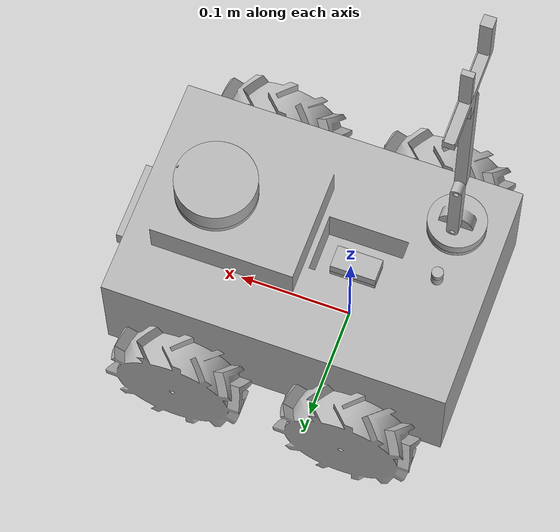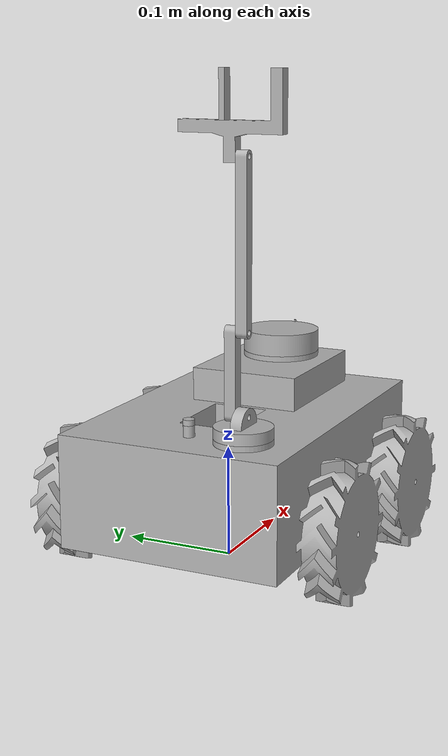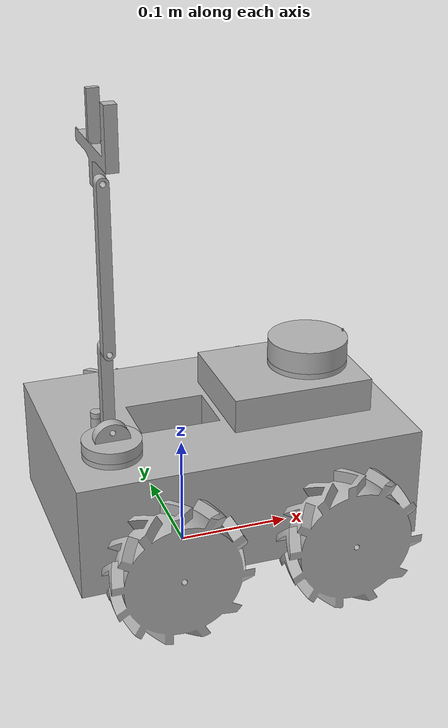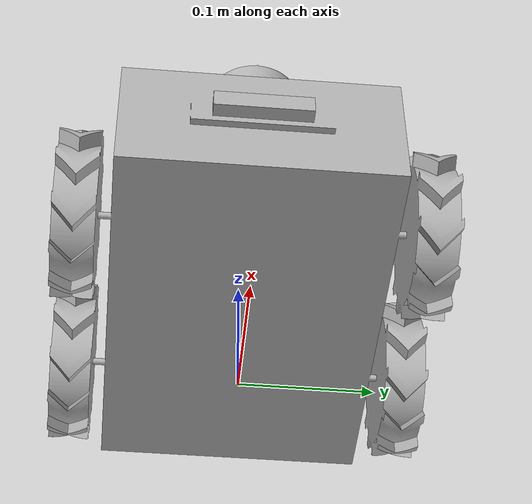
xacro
<?xml version="1.0" ?>
<robot name="yodha_robot_urdf" xmlns:xacro="http://www.ros.org/wiki/xacro">

<xacro:include filename="$(find yodha_robot_urdf_description)/urdf/materials.xacro" />
<xacro:include filename="$(find yodha_robot_urdf_description)/urdf/yodha_robot_urdf.trans" />
<xacro:include filename="$(find yodha_robot_urdf_description)/urdf/yodha_robot_urdf.gazebo" />
<link name="base_link">
  <inertial>
    <origin xyz="0.03759192510064886 0.00114551253474628 0.08335481785975894" rpy="0 0 0"/>
    <mass value="6.677608360201219"/>
    <inertia ixx="0.028505" iyy="0.056903" izz="0.071517" ixy="-6e-05" iyz="2.6e-05" ixz="-0.001749"/>
  </inertial>
  <visual>
    <origin xyz="0 0 0" rpy="0 0 0"/>
    <geometry>
      <mesh filename="file://$(find yodha_robot_urdf_description)/meshes/base_link.stl" scale="0.001 0.001 0.001"/>
    </geometry>
    <material name="silver"/>
  </visual>
  <collision>
    <origin xyz="0 0 0" rpy="0 0 0"/>
    <geometry>
      <mesh filename="file://$(find yodha_robot_urdf_description)/meshes/base_link.stl" scale="0.001 0.001 0.001"/>
    </geometry>
  </collision>
</link>

<link name="lidar_1">
  <inertial>
    <origin xyz="1.44853377330445e-06 2.7616170642256674e-07 0.010000470080404444" rpy="0 0 0"/>
    <mass value="0.6042382071025928"/>
    <inertia ixx="0.000205" iyy="0.000205" izz="0.00037" ixy="-0.0" iyz="-0.0" ixz="-0.0"/>
  </inertial>
  <visual>
    <origin xyz="-0.117737 -0.001226 -0.164764" rpy="0 0 0"/>
    <geometry>
      <mesh filename="file://$(find yodha_robot_urdf_description)/meshes/lidar_1.stl" scale="0.001 0.001 0.001"/>
    </geometry>
    <material name="silver"/>
  </visual>
  <collision>
    <origin xyz="-0.117737 -0.001226 -0.164764" rpy="0 0 0"/>
    <geometry>
      <mesh filename="file://$(find yodha_robot_urdf_description)/meshes/lidar_1.stl" scale="0.001 0.001 0.001"/>
    </geometry>
  </collision>
</link>

<link name="realsence_1">
  <inertial>
    <origin xyz="0.004999707663906422 2.761617057150164e-07 -1.0024462618329899e-07" rpy="0 0 0"/>
    <mass value="0.08242500245645643"/>
    <inertia ixx="3.5e-05" iyy="2e-06" izz="3.4e-05" ixy="-0.0" iyz="-0.0" ixz="0.0"/>
  </inertial>
  <visual>
    <origin xyz="-0.187737 -0.001226 -0.082264" rpy="0 0 0"/>
    <geometry>
      <mesh filename="file://$(find yodha_robot_urdf_description)/meshes/realsence_1.stl" scale="0.001 0.001 0.001"/>
    </geometry>
    <material name="silver"/>
  </visual>
  <collision>
    <origin xyz="-0.187737 -0.001226 -0.082264" rpy="0 0 0"/>
    <geometry>
      <mesh filename="file://$(find yodha_robot_urdf_description)/meshes/realsence_1.stl" scale="0.001 0.001 0.001"/>
    </geometry>
  </collision>
</link>

<link name="rfwheel_1">
  <inertial>
    <origin xyz="-0.0004889140025854805 -0.014999723838293719 0.00011426195402471084" rpy="0 0 0"/>
    <mass value="2.044817023447539"/>
    <inertia ixx="0.001605" iyy="0.002914" izz="0.001615" ixy="-0.0" iyz="-0.0" ixz="2e-06"/>
  </inertial>
  <visual>
    <origin xyz="-0.107737 0.108774 -0.054764" rpy="0 0 0"/>
    <geometry>
      <mesh filename="file://$(find yodha_robot_urdf_description)/meshes/rfwheel_1.stl" scale="0.001 0.001 0.001"/>
    </geometry>
    <material name="silver"/>
  </visual>
  <collision>
    <origin xyz="-0.107737 0.108774 -0.054764" rpy="0 0 0"/>
    <geometry>
      <mesh filename="file://$(find yodha_robot_urdf_description)/meshes/rfwheel_1.stl" scale="0.001 0.001 0.001"/>
    </geometry>
  </collision>
</link>

<link name="rbwheel_1">
  <inertial>
    <origin xyz="-0.0004889140025840233 -0.014999723838292706 0.00011426195402416961" rpy="0 0 0"/>
    <mass value="2.0448170234475396"/>
    <inertia ixx="0.001605" iyy="0.002914" izz="0.001615" ixy="0.0" iyz="-0.0" ixz="2e-06"/>
  </inertial>
  <visual>
    <origin xyz="0.042263 0.108774 -0.054764" rpy="0 0 0"/>
    <geometry>
      <mesh filename="file://$(find yodha_robot_urdf_description)/meshes/rbwheel_1.stl" scale="0.001 0.001 0.001"/>
    </geometry>
    <material name="silver"/>
  </visual>
  <collision>
    <origin xyz="0.042263 0.108774 -0.054764" rpy="0 0 0"/>
    <geometry>
      <mesh filename="file://$(find yodha_robot_urdf_description)/meshes/rbwheel_1.stl" scale="0.001 0.001 0.001"/>
    </geometry>
  </collision>
</link>

<link name="lfwheel_1">
  <inertial>
    <origin xyz="-0.0004889140025847172 0.01500027616170617 0.00011426195402349654" rpy="0 0 0"/>
    <mass value="2.044817023447539"/>
    <inertia ixx="0.001605" iyy="0.002914" izz="0.001615" ixy="0.0" iyz="-0.0" ixz="2e-06"/>
  </inertial>
  <visual>
    <origin xyz="-0.107737 -0.111226 -0.054764" rpy="0 0 0"/>
    <geometry>
      <mesh filename="file://$(find yodha_robot_urdf_description)/meshes/lfwheel_1.stl" scale="0.001 0.001 0.001"/>
    </geometry>
    <material name="silver"/>
  </visual>
  <collision>
    <origin xyz="-0.107737 -0.111226 -0.054764" rpy="0 0 0"/>
    <geometry>
      <mesh filename="file://$(find yodha_robot_urdf_description)/meshes/lfwheel_1.stl" scale="0.001 0.001 0.001"/>
    </geometry>
  </collision>
</link>

<link name="lbwheel_1">
  <inertial>
    <origin xyz="-0.0004889140025833849 0.015000276161707196 0.00011426195402289979" rpy="0 0 0"/>
    <mass value="2.0448170234475396"/>
    <inertia ixx="0.001605" iyy="0.002914" izz="0.001615" ixy="0.0" iyz="-0.0" ixz="2e-06"/>
  </inertial>
  <visual>
    <origin xyz="0.042263 -0.111226 -0.054764" rpy="0 0 0"/>
    <geometry>
      <mesh filename="file://$(find yodha_robot_urdf_description)/meshes/lbwheel_1.stl" scale="0.001 0.001 0.001"/>
    </geometry>
    <material name="silver"/>
  </visual>
  <collision>
    <origin xyz="0.042263 -0.111226 -0.054764" rpy="0 0 0"/>
    <geometry>
      <mesh filename="file://$(find yodha_robot_urdf_description)/meshes/lbwheel_1.stl" scale="0.001 0.001 0.001"/>
    </geometry>
  </collision>
</link>

<link name="imu_1">
  <inertial>
    <origin xyz="8.556984261789968e-10 2.420403805189785e-12 0.004999898451521614" rpy="0 0 0"/>
    <mass value="0.06280000187158614"/>
    <inertia ixx="3e-06" iyy="9e-06" izz="1e-05" ixy="0.0" iyz="-0.0" ixz="-0.0"/>
  </inertial>
  <visual>
    <origin xyz="0.005 -0.0 -0.099764" rpy="0 0 0"/>
    <geometry>
      <mesh filename="file://$(find yodha_robot_urdf_description)/meshes/imu_1.stl" scale="0.001 0.001 0.001"/>
    </geometry>
    <material name="silver"/>
  </visual>
  <collision>
    <origin xyz="0.005 -0.0 -0.099764" rpy="0 0 0"/>
    <geometry>
      <mesh filename="file://$(find yodha_robot_urdf_description)/meshes/imu_1.stl" scale="0.001 0.001 0.001"/>
    </geometry>
  </collision>
</link>

<link name="gps_1">
  <inertial>
    <origin xyz="9.296814013071142e-10 2.4204614829476862e-12 0.0024998984515221534" rpy="0 0 0"/>
    <mass value="0.003082687791335116"/>
    <inertia ixx="0.0" iyy="0.0" izz="0.0" ixy="0.0" iyz="-0.0" ixz="-0.0"/>
  </inertial>
  <visual>
    <origin xyz="0.075 -0.0 -0.139764" rpy="0 0 0"/>
    <geometry>
      <mesh filename="file://$(find yodha_robot_urdf_description)/meshes/gps_1.stl" scale="0.001 0.001 0.001"/>
    </geometry>
    <material name="silver"/>
  </visual>
  <collision>
    <origin xyz="0.075 -0.0 -0.139764" rpy="0 0 0"/>
    <geometry>
      <mesh filename="file://$(find yodha_robot_urdf_description)/meshes/gps_1.stl" scale="0.001 0.001 0.001"/>
    </geometry>
  </collision>
</link>

<link name="link_rotate_arm_1">
  <inertial>
    <origin xyz="6.272633384929449e-10 -1.0815964096577702e-10 0.006686716135703513" rpy="0 0 0"/>
    <mass value="0.18089567585712482"/>
    <inertia ixx="2.9e-05" iyy="3e-05" izz="5e-05" ixy="0.0" iyz="0.0" ixz="0.0"/>
  </inertial>
  <visual>
    <origin xyz="0.075 0.05 -0.134764" rpy="0 0 0"/>
    <geometry>
      <mesh filename="file://$(find yodha_robot_urdf_description)/meshes/link_rotate_arm_1.stl" scale="0.001 0.001 0.001"/>
    </geometry>
    <material name="silver"/>
  </visual>
  <collision>
    <origin xyz="0.075 0.05 -0.134764" rpy="0 0 0"/>
    <geometry>
      <mesh filename="file://$(find yodha_robot_urdf_description)/meshes/link_rotate_arm_1.stl" scale="0.001 0.001 0.001"/>
    </geometry>
  </collision>
</link>

<link name="link_one_arm_1">
  <inertial>
    <origin xyz="-1.0397197824918436e-09 0.004999999329448161 0.0350000021132226" rpy="0 0 0"/>
    <mass value="0.05803268768277522"/>
    <inertia ixx="2.8e-05" iyy="2.8e-05" izz="1e-06" ixy="0.0" iyz="-0.0" ixz="-0.0"/>
  </inertial>
  <visual>
    <origin xyz="0.075 0.045 -0.1525" rpy="0 0 0"/>
    <geometry>
      <mesh filename="file://$(find yodha_robot_urdf_description)/meshes/link_one_arm_1.stl" scale="0.001 0.001 0.001"/>
    </geometry>
    <material name="silver"/>
  </visual>
  <collision>
    <origin xyz="0.075 0.045 -0.1525" rpy="0 0 0"/>
    <geometry>
      <mesh filename="file://$(find yodha_robot_urdf_description)/meshes/link_one_arm_1.stl" scale="0.001 0.001 0.001"/>
    </geometry>
  </collision>
</link>

<link name="Link_two_arm_1">
  <inertial>
    <origin xyz="-1.0451212673068255e-09 -0.005000000670551605 0.07000000321050995" rpy="0 0 0"/>
    <mass value="0.11298268776623219"/>
    <inertia ixx="0.000197" iyy="0.000197" izz="2e-06" ixy="-0.0" iyz="-0.0" ixz="0.0"/>
  </inertial>
  <visual>
    <origin xyz="0.075 0.045 -0.2225" rpy="0 0 0"/>
    <geometry>
      <mesh filename="file://$(find yodha_robot_urdf_description)/meshes/Link_two_arm_1.stl" scale="0.001 0.001 0.001"/>
    </geometry>
    <material name="silver"/>
  </visual>
  <collision>
    <origin xyz="0.075 0.045 -0.2225" rpy="0 0 0"/>
    <geometry>
      <mesh filename="file://$(find yodha_robot_urdf_description)/meshes/Link_two_arm_1.stl" scale="0.001 0.001 0.001"/>
    </geometry>
  </collision>
</link>

<link name="Gripper_arm_1">
  <inertial>
    <origin xyz="-1.0887049472496635e-06 -0.006865669790668855 0.026869554630628734" rpy="0 0 0"/>
    <mass value="0.11008565604377714"/>
    <inertia ixx="0.000104" iyy="2.8e-05" izz="7.8e-05" ixy="0.0" iyz="2.6e-05" ixz="-0.0"/>
  </inertial>
  <visual>
    <origin xyz="0.075 0.045 -0.3625" rpy="0 0 0"/>
    <geometry>
      <mesh filename="file://$(find yodha_robot_urdf_description)/meshes/Gripper_arm_1.stl" scale="0.001 0.001 0.001"/>
    </geometry>
    <material name="silver"/>
  </visual>
  <collision>
    <origin xyz="0.075 0.045 -0.3625" rpy="0 0 0"/>
    <geometry>
      <mesh filename="file://$(find yodha_robot_urdf_description)/meshes/Gripper_arm_1.stl" scale="0.001 0.001 0.001"/>
    </geometry>
  </collision>
</link>

<link name="Gripper_lock_arm_1">
  <inertial>
    <origin xyz="4.570676908066673e-07 0.0034999996274713424 0.00019231335475239364" rpy="0 0 0"/>
    <mass value="0.01632800000000002"/>
    <inertia ixx="2e-06" iyy="2e-06" izz="0.0" ixy="-0.0" iyz="-0.0" ixz="0.0"/>
  </inertial>
  <visual>
    <origin xyz="0.075 0.075 -0.409" rpy="0 0 0"/>
    <geometry>
      <mesh filename="file://$(find yodha_robot_urdf_description)/meshes/Gripper_lock_arm_1.stl" scale="0.001 0.001 0.001"/>
    </geometry>
    <material name="silver"/>
  </visual>
  <collision>
    <origin xyz="0.075 0.075 -0.409" rpy="0 0 0"/>
    <geometry>
      <mesh filename="file://$(find yodha_robot_urdf_description)/meshes/Gripper_lock_arm_1.stl" scale="0.001 0.001 0.001"/>
    </geometry>
  </collision>
</link>

<joint name="Rigid 2" type="fixed">
  <origin xyz="0.117737 0.001226 0.164764" rpy="0 0 0"/>
  <parent link="base_link"/>
  <child link="lidar_1"/>
</joint>

<joint name="Rigid 3" type="fixed">
  <origin xyz="0.187737 0.001226 0.082264" rpy="0 0 0"/>
  <parent link="base_link"/>
  <child link="realsence_1"/>
</joint>

<joint name="Revolute 4" type="continuous">
  <origin xyz="0.107737 -0.108774 0.054764" rpy="0 0 0"/>
  <parent link="base_link"/>
  <child link="rfwheel_1"/>
  <axis xyz="-0.0 -1.0 0.0"/>
</joint>

<joint name="Revolute 5" type="continuous">
  <origin xyz="-0.042263 -0.108774 0.054764" rpy="0 0 0"/>
  <parent link="base_link"/>
  <child link="rbwheel_1"/>
  <axis xyz="-0.0 -1.0 0.0"/>
</joint>

<joint name="Revolute 6" type="continuous">
  <origin xyz="0.107737 0.111226 0.054764" rpy="0 0 0"/>
  <parent link="base_link"/>
  <child link="lfwheel_1"/>
  <axis xyz="0.0 1.0 -0.0"/>
</joint>

<joint name="Revolute 7" type="continuous">
  <origin xyz="-0.042263 0.111226 0.054764" rpy="0 0 0"/>
  <parent link="base_link"/>
  <child link="lbwheel_1"/>
  <axis xyz="0.0 1.0 -0.0"/>
</joint>

<joint name="Rigid 9" type="fixed">
  <origin xyz="-0.005 0.0 0.099764" rpy="0 0 0"/>
  <parent link="base_link"/>
  <child link="imu_1"/>
</joint>

<joint name="Rigid 10" type="fixed">
  <origin xyz="-0.075 0.0 0.139764" rpy="0 0 0"/>
  <parent link="base_link"/>
  <child link="gps_1"/>
</joint>

<joint name="Revolute 27" type="revolute">
  <origin xyz="-0.075 -0.05 0.134764" rpy="0 0 0"/>
  <parent link="base_link"/>
  <child link="link_rotate_arm_1"/>
  <axis xyz="-0.0 0.0 1.0"/>
  <limit upper="1.570796" lower="-0.610865" effort="100" velocity="100"/>
</joint>

<joint name="Revolute 28" type="revolute">
  <origin xyz="0.0 0.005 0.017736" rpy="0 0 0"/>
  <parent link="link_rotate_arm_1"/>
  <child link="link_one_arm_1"/>
  <axis xyz="0.0 1.0 -0.0"/>
  <limit upper="0.785398" lower="-1.570796" effort="100" velocity="100"/>
</joint>

<joint name="Revolute 29" type="revolute">
  <origin xyz="0.0 0.0 0.07" rpy="0 0 0"/>
  <parent link="link_one_arm_1"/>
  <child link="Link_two_arm_1"/>
  <axis xyz="0.0 1.0 -0.0"/>
  <limit upper="0.785398" lower="-0.785398" effort="100" velocity="100"/>
</joint>

<joint name="Revolute 30" type="revolute">
  <origin xyz="0.0 0.0 0.14" rpy="0 0 0"/>
  <parent link="Link_two_arm_1"/>
  <child link="Gripper_arm_1"/>
  <axis xyz="0.0 1.0 -0.0"/>
  <limit upper="0.0" lower="-2.181662" effort="100" velocity="100"/>
</joint>

<joint name="Slider 31" type="prismatic">
  <origin xyz="0.0 -0.03 0.0465" rpy="0 0 0"/>
  <parent link="Gripper_arm_1"/>
  <child link="Gripper_lock_arm_1"/>
  <axis xyz="0.0 1.0 -0.0"/>
  <limit upper="0.075" lower="0.001" effort="100" velocity="100"/>
</joint>

</robot>

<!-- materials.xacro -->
<robot name="yodha_robot_urdf" xmlns:xacro="http://www.ros.org/wiki/xacro" >

<material name="silver">
  <color rgba="0.700 0.700 0.700 1.000"/>
</material>

</robot>

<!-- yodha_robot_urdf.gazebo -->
<robot name="yodha_robot_urdf" xmlns:xacro="http://www.ros.org/wiki/xacro" >

<xacro:property name="body_color" value="Gazebo/Silver" />

<gazebo>
  <plugin name="control" filename="libgazebo_ros_control.so"/>
</gazebo>
<gazebo reference="base_link">
  <material>${body_color}</material>
  <mu1>0.2</mu1>
  <mu2>0.2</mu2>
  <self_collide>true</self_collide>
  <gravity>true</gravity>
</gazebo>

<gazebo reference="lidar_1">
  <material>${body_color}</material>
  <mu1>0.2</mu1>
  <mu2>0.2</mu2>
  <self_collide>true</self_collide>
</gazebo>

<gazebo reference="realsence_1">
  <material>${body_color}</material>
  <mu1>0.2</mu1>
  <mu2>0.2</mu2>
  <self_collide>true</self_collide>
</gazebo>

<gazebo reference="rfwheel_1">
  <material>${body_color}</material>
  <mu1>0.2</mu1>
  <mu2>0.2</mu2>
  <self_collide>true</self_collide>
</gazebo>

<gazebo reference="rbwheel_1">
  <material>${body_color}</material>
  <mu1>0.2</mu1>
  <mu2>0.2</mu2>
  <self_collide>true</self_collide>
</gazebo>

<gazebo reference="lfwheel_1">
  <material>${body_color}</material>
  <mu1>0.2</mu1>
  <mu2>0.2</mu2>
  <self_collide>true</self_collide>
</gazebo>

<gazebo reference="lbwheel_1">
  <material>${body_color}</material>
  <mu1>0.2</mu1>
  <mu2>0.2</mu2>
  <self_collide>true</self_collide>
</gazebo>

<gazebo reference="imu_1">
  <material>${body_color}</material>
  <mu1>0.2</mu1>
  <mu2>0.2</mu2>
  <self_collide>true</self_collide>
</gazebo>

<gazebo reference="gps_1">
  <material>${body_color}</material>
  <mu1>0.2</mu1>
  <mu2>0.2</mu2>
  <self_collide>true</self_collide>
</gazebo>

<gazebo reference="link_rotate_arm_1">
  <material>${body_color}</material>
  <mu1>0.2</mu1>
  <mu2>0.2</mu2>
  <self_collide>true</self_collide>
</gazebo>

<gazebo reference="link_one_arm_1">
  <material>${body_color}</material>
  <mu1>0.2</mu1>
  <mu2>0.2</mu2>
  <self_collide>true</self_collide>
</gazebo>

<gazebo reference="Link_two_arm_1">
  <material>${body_color}</material>
  <mu1>0.2</mu1>
  <mu2>0.2</mu2>
  <self_collide>true</self_collide>
</gazebo>

<gazebo reference="Gripper_arm_1">
  <material>${body_color}</material>
  <mu1>0.2</mu1>
  <mu2>0.2</mu2>
  <self_collide>true</self_collide>
</gazebo>

<gazebo reference="Gripper_lock_arm_1">
  <material>${body_color}</material>
  <mu1>0.2</mu1>
  <mu2>0.2</mu2>
  <self_collide>true</self_collide>
</gazebo>

</robot>
